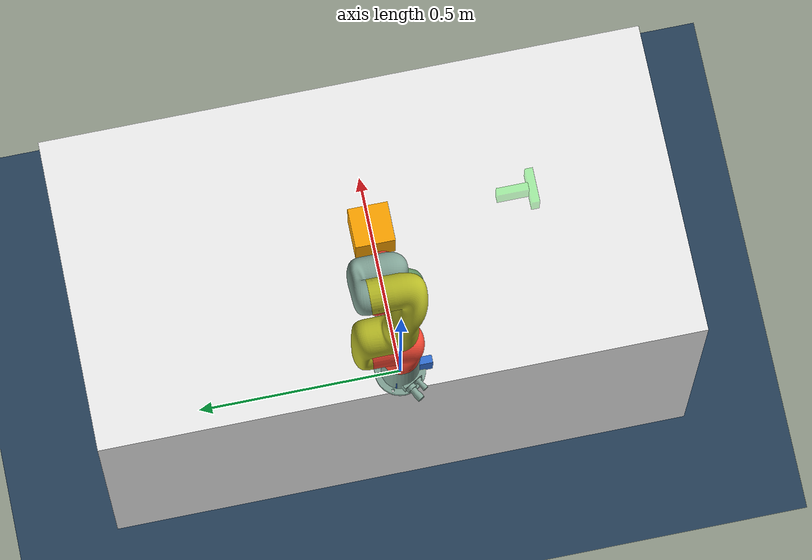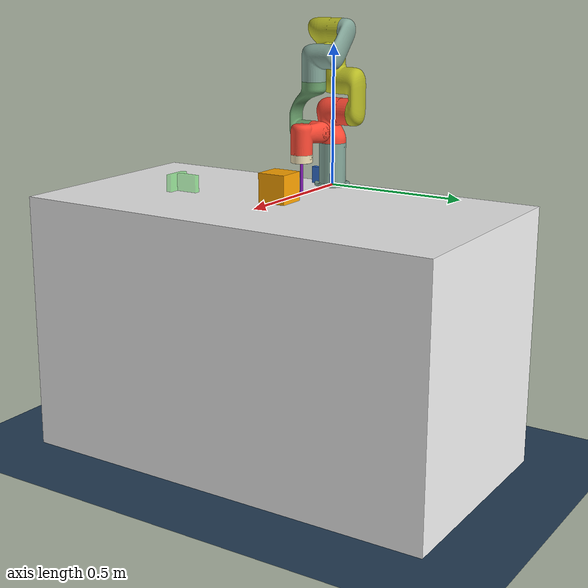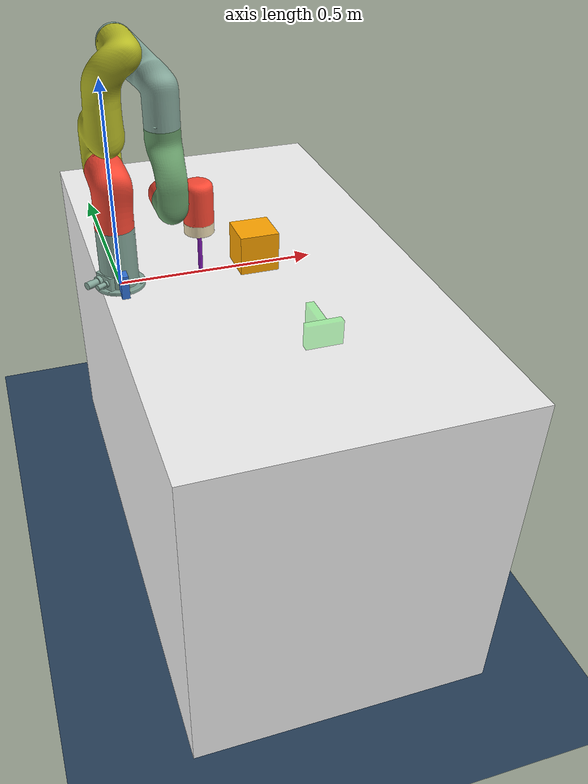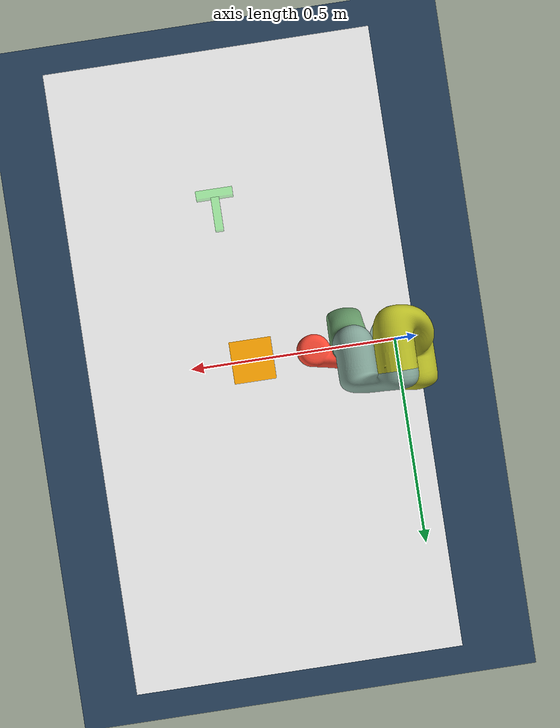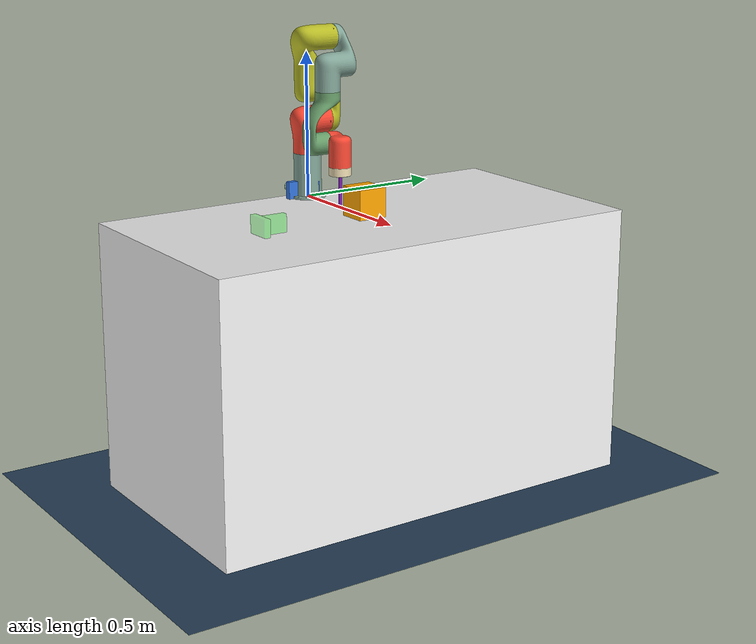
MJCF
<mujoco model="xarm6_pusht_single_obstacle">
  <include file="common.xml"/>
  <include file="tee.xml"/>
  <include file="tee_start.xml"/>

  <worldbody>
    <!-- Same camera as open_table (see its comment); shared verbatim by
         every tabletop scene except shelf_gap. -->
    <camera name="front" pos="1.5592 0.0000 0.6494"
      xyaxes="0.0000 1.0000 -0.0000 -0.4226 0.0000 0.9063"/>

    <geom class="tabletop_obstacle" name="obs_box" type="box" size="0.05 0.05 0.05" pos="0.35 0.0 0.05"/>
  </worldbody>
</mujoco>

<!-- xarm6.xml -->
<mujoco model="xarm6_stick">

  <compiler angle="degree"/>

  <default>
    <default class="xarm6">
      <geom type="mesh" contype="1" conaffinity="1"
            solimp="0.99 0.99 0.01" solref="0.01 1"/>
      <joint damping="50" armature="1" frictionloss="0" limited="true"/>
      <velocity ctrllimited="true" forcelimited="true"/>
    </default>
  </default>

  <contact>
    <exclude body1="xarm6_link_base" body2="xarm6_link1"/>
    <exclude body1="xarm6_link1" body2="xarm6_link2"/>
    <exclude body1="xarm6_link2" body2="xarm6_link3"/>
    <exclude body1="xarm6_link3" body2="xarm6_link4"/>
    <exclude body1="xarm6_link4" body2="xarm6_link5"/>
    <exclude body1="xarm6_link5" body2="xarm6_link6"/>
    <exclude body1="xarm6_link6" body2="xarm6_stick"/>
  </contact>

  <asset>
    <material name="xarm6_gray" rgba="0.156863 0.156863 0.156863 1"/>
    <material name="xarm6_blue" rgba="0.513725 0.647059 0.596078 1"/>
    <material name="xarm6_red" rgba="0.984314 0.286275 0.203922 1"/>
    <material name="xarm6_yellow" rgba="0.721569 0.733333 0.14902 1"/>
    <material name="xarm6_green" rgba="0.407843 0.615686 0.415686 1"/>
    <material name="xarm6_white" rgba="0.921569 0.858824 0.698039 1"/>
    <material name="xarm6_stick" rgba="0.5 0.1 0.7 1"/>

    <mesh name="link_base_shell" file="assets/link1.obj" maxhullvert="32"/>
    <mesh name="link1" file="assets/link2.obj" maxhullvert="32"/>
    <mesh name="link2" file="assets/link3.obj" maxhullvert="32"/>
    <mesh name="link3" file="assets/link4.obj" maxhullvert="32"/>
    <mesh name="link4" file="assets/link5.obj" maxhullvert="32"/>
    <mesh name="link5" file="assets/link6.obj" maxhullvert="32"/>
    <mesh name="link6" file="assets/tool_flange.obj" maxhullvert="32"/>
  </asset>

  <worldbody>
    <body name="xarm6_link_base" childclass="xarm6">
      <geom name="xarm6_base_shell" mesh="link_base_shell" euler="0 0 180"
            material="xarm6_blue" mass="2.7"/>

      <body name="xarm6_link1" pos="0 0 0.1538" gravcomp="1">
        <joint name="xarm6_joint1" axis="0 0 1" range="-360 360"/>
        <geom name="xarm6_link1" mesh="link1" euler="0 0 180"
              material="xarm6_red" mass="2.16"/>

        <body name="xarm6_link2" pos="0.000350 0.075295 0.112000" euler="-90 0 -90" gravcomp="1">
          <joint name="xarm6_joint2" axis="0 0 1" range="-114.5916 114.5916"/>
          <geom name="xarm6_link2" mesh="link2" euler="0 0 180"
                material="xarm6_yellow" mass="1.71"/>

          <body name="xarm6_link3" pos="0.284550 0.053312 -0.008303" euler="0 0 90" gravcomp="1">
            <joint name="xarm6_joint3" axis="0 0 1" range="-223.4592 10.8859"/>
            <geom name="xarm6_link3" mesh="link3" euler="0 0 0"
                  material="xarm6_blue" mass="1.384"/>

            <body name="xarm6_link4" pos="0.077700 0.169121 -0.067495" euler="-90 0 0" gravcomp="1">
              <joint name="xarm6_joint4" axis="0 0 1" range="-360 360"
                     stiffness="175" springref="0"/>
              <geom name="xarm6_link4" mesh="link4" euler="0 0 90"
                    material="xarm6_green" mass="1.115"/>

              <body name="xarm6_link5" pos="-0.000006 0.004747 0.172996" euler="90 0 0" gravcomp="1">
                <joint name="xarm6_joint5" axis="0 0 1" range="-94.5352 180"/>
                <geom name="xarm6_link5" mesh="link5" euler="0 0 180"
                      material="xarm6_red" mass="1.275"/>

                <body name="xarm6_link6" pos="0.076010 0.068771 0.004339" euler="-90 0 0" gravcomp="1">
                  <joint name="xarm6_joint6" axis="0 0 1" range="-360 360"/>
                  <geom name="xarm6_link6" mesh="link6" euler="0 0 90"
                        material="xarm6_white" mass="0.1096"/>

                  <body name="xarm6_stick" pos="0 0 0">
                    <geom name="xarm6_stick" type="capsule" size="0.00555 0.08415"
                          pos="0 0 0.0897" material="xarm6_stick" mass="0.05"/>
                    <site name="xarm6_tip" pos="0 0 0.1794" size="0.003" rgba="1 0 0 1"/>
                  </body>
                </body>
              </body>
            </body>
          </body>
        </body>
      </body>
    </body>
  </worldbody>

  <actuator>
    <velocity class="xarm6" name="xarm6_motor1" joint="xarm6_joint1"
              ctrlrange="-0.5 0.5" forcerange="-50 50" kv="300"/>
    <velocity class="xarm6" name="xarm6_motor2" joint="xarm6_joint2"
              ctrlrange="-0.5 0.5" forcerange="-50 50" kv="300"/>
    <velocity class="xarm6" name="xarm6_motor3" joint="xarm6_joint3"
              ctrlrange="-0.5 0.5" forcerange="-32 32" kv="200"/>
    <velocity class="xarm6" name="xarm6_motor4" joint="xarm6_joint4"
              ctrlrange="-0.5 0.5" forcerange="-32 32" kv="200"/>
    <velocity class="xarm6" name="xarm6_motor5" joint="xarm6_joint5"
              ctrlrange="-0.5 0.5" forcerange="-32 32" kv="200"/>
    <velocity class="xarm6" name="xarm6_motor6" joint="xarm6_joint6"
              ctrlrange="-0.5 0.5" forcerange="-20 20" kv="200"/>
  </actuator>
</mujoco>

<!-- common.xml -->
<mujoco model="xarm6_pusht_tabletop_common">

  <option timestep="0.01" gravity="0 0 -9.81" iterations="20" ls_iterations="20" integrator="implicitfast"/>

  <include file="../xarm6/xarm6.xml"/>

  <default>
    <geom friction="0.5 0.005 0.0001" solref="0.004 1" solimp="0.9 0.95 0.001"/>
    <default class="goal">
      <geom conaffinity="0" contype="0" rgba="0 1 0 0.3"/>
    </default>
    <default class="local_goal">
      <geom conaffinity="0" contype="0" rgba="0 0.30 0.95 0.25"/>
    </default>
    <default class="obstacle">
      <geom conaffinity="1" contype="1" rgba="0.5 0.5 0.5 1"/>
    </default>
    <default class="tabletop_obstacle">
      <geom conaffinity="1" contype="1" rgba="1.0 0.647 0.0 1"/>
    </default>
  </default>

  <visual>
    <headlight diffuse="0.6 0.6 0.6" ambient="0.3 0.3 0.3" specular="0 0 0"/>
    <rgba haze="0.15 0.25 0.35 1"/>
  </visual>

  <asset>
    <texture type="skybox" builtin="gradient" rgb1="0.3 0.5 0.7" rgb2="0 0 0" width="512" height="3072"/>
    <texture type="2d" name="groundplane" builtin="checker" mark="edge" rgb1="0.2 0.3 0.4" rgb2="0.1 0.2 0.3"
      markrgb="0.8 0.8 0.8" width="300" height="300"/>
    <material name="groundplane" texture="groundplane" texuniform="true" texrepeat="5 5" reflectance="0.2"/>
  </asset>

  <worldbody>
    <light pos="0.3 0.0 1"/>
    <geom name="floor" size="0 0 .125" type="plane" pos="0 0 -0.91"
      contype="2" conaffinity="2" material="groundplane"/>
  </worldbody>

</mujoco>

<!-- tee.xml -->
<mujoco model="xarm6_pusht_tabletop_tee">

  <worldbody>
    <geom name="table" type="box" size="0.40 0.7615 0.455" pos="0.35 0 -0.455"
      contype="3" conaffinity="3" rgba="0.95 0.95 0.95 1"/>

    <body name="goal" mocap="true" pos="0.381 -0.400 0.0298" quat="0 0 0 1">
      <geom class="goal" name="goal_crossbar" type="box" size="0.0445 0.0099 0.0298" pos="0.0 0.0099 0.0"/>
      <geom class="goal" name="goal_stem" type="box" size="0.0099 0.0397 0.0298" pos="0.0 -0.0397 0.0"/>
    </body>

    <body name="local_goal" mocap="true" pos="0.0 0.0 0.0298" quat="1 0 0 0">
      <geom class="local_goal" name="local_goal_crossbar" type="box" size="0.0445 0.0099 0.0298" pos="0.0 0.0099 0.0"/>
      <geom class="local_goal" name="local_goal_stem" type="box" size="0.0099 0.0397 0.0298" pos="0.0 -0.0397 0.0"/>
    </body>

    <body name="block" pos="0.0 0.0 0.0298">
      <joint name="T_x" type="slide" axis="1 0 0" damping="0.0"/>
      <joint name="T_y" type="slide" axis="0 1 0" damping="0.0"/>
      <joint name="T_z" type="hinge" axis="0 0 1" damping="0.0"/>
      <joint name="T_zs" type="slide" axis="0 0 1" damping="0.0"/>
      <geom name="block_crossbar" contype="3" conaffinity="3" type="box" size="0.0445 0.0099 0.0298" pos="0.0 0.0099 0.0" mass="0.05" rgba="0.2 0.45 0.85 1"/>
      <geom name="block_stem" contype="3" conaffinity="3" type="box" size="0.0099 0.0397 0.0298" pos="0.0 -0.0397 0.0" mass="0.05" rgba="0.2 0.45 0.85 1"/>
    </body>
  </worldbody>

  <contact>
    <pair geom1="block_crossbar" geom2="table" condim="3" friction="0.3 0.3 0.005 0.0001 0.0001" solimp="0.999 0.9999 0.0001"/>
    <pair geom1="block_stem" geom2="table" condim="3" friction="0.3 0.3 0.005 0.0001 0.0001" solimp="0.999 0.9999 0.0001"/>
  </contact>

  <sensor>
    <framepos name="position" objtype="body" objname="block" reftype="body" refname="goal"/>
    <framequat name="orientation" objtype="body" objname="block" reftype="body" refname="goal"/>
  </sensor>

  <statistic center="0.381 0 0" extent="0.9"/>
</mujoco>

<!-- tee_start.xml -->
<mujoco model="xarm6_pusht_tabletop_tee_start">
  <keyframe>
    <key name="start"
      qpos="0.0 -0.785 -0.785 0.0 1.5708 0.381 0.400 0.0 0.0"/>
  </keyframe>
</mujoco>
